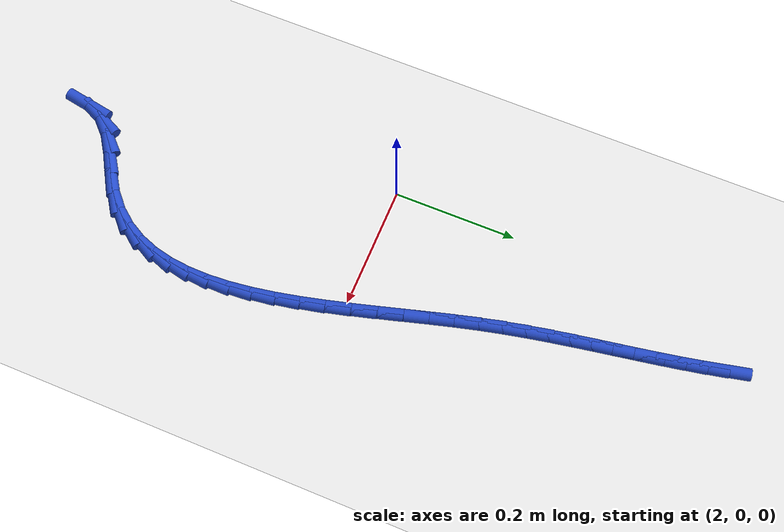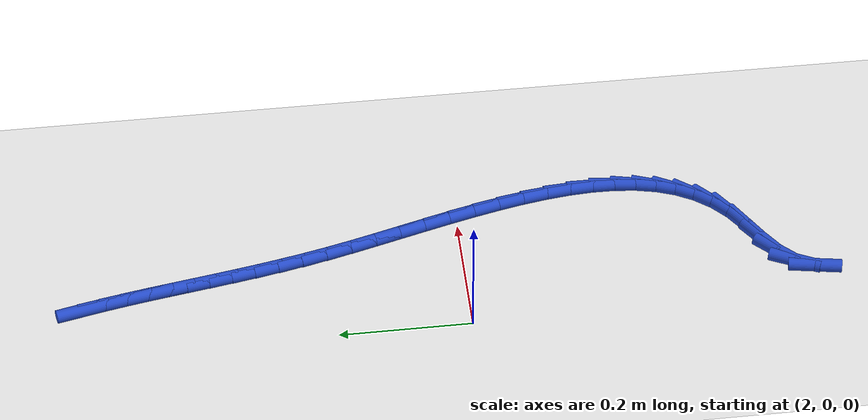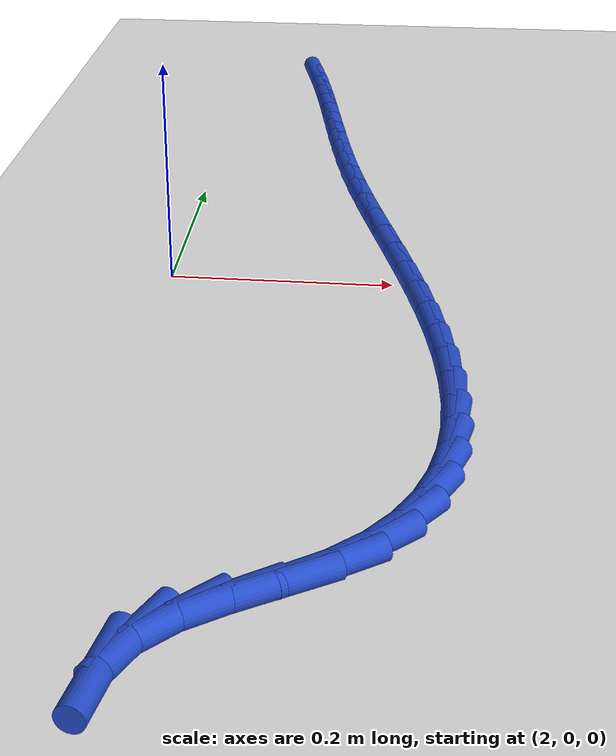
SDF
<sdf version="1.6">
 <world name="default">
  <model name="ground_plane">
   <static>1</static>
   <link name="link">
    <collision name="collision">
     <geometry><plane><normal>0 0 1</normal><size>100 100</size></plane></geometry>
     <surface><friction><ode><mu>100</mu><mu2>50</mu2></ode></friction></surface>
    </collision>
    <visual name="visual">
     <cast_shadows>0</cast_shadows>
     <geometry><plane><normal>0 0 1</normal><size>100 100</size></plane></geometry>
     <material>
      <script><uri>file://media/materials/scripts/gazebo.material</uri><name>Gazebo/WhiteGlow</name></script>
     </material>
    </visual>
   </link>
  </model>
  <model name="line">
   <link name="link_87">
    <pose>2.0848642311916312 0.573121603409432 0.01 0 1.57 -1.3496269318410352</pose>
    <collision name="collision">
     <geometry><cylinder><radius>0.01</radius><length>0.08</length></cylinder></geometry>
    </collision>
    <visual name="visual">
     <material>
      <script><name>Gazebo/Blue</name><uri>file://media/materials/scripts/gazebo.material</uri></script>
     </material>
     <geometry><cylinder><radius>0.01</radius><length>0.08</length></cylinder></geometry>
    </visual>
   </link>
   <link name="link_88">
    <pose>2.0921163542295593 0.5408681011771894 0.01 0 1.57 -1.369022476120428</pose>
    <collision name="collision">
     <geometry><cylinder><radius>0.01</radius><length>0.08</length></cylinder></geometry>
    </collision>
    <visual name="visual">
     <material>
      <script><name>Gazebo/Blue</name><uri>file://media/materials/scripts/gazebo.material</uri></script>
     </material>
     <geometry><cylinder><radius>0.01</radius><length>0.08</length></cylinder></geometry>
    </visual>
   </link>
   <link name="link_89">
    <pose>2.098708754404504 0.5086404779750255 0.01 0 1.57 -1.3838342472088596</pose>
    <collision name="collision">
     <geometry><cylinder><radius>0.01</radius><length>0.08</length></cylinder></geometry>
    </collision>
    <visual name="visual">
     <material>
      <script><name>Gazebo/Blue</name><uri>file://media/materials/scripts/gazebo.material</uri></script>
     </material>
     <geometry><cylinder><radius>0.01</radius><length>0.08</length></cylinder></geometry>
    </visual>
   </link>
   <link name="link_90">
    <pose>2.1048186800212227 0.4763421170943897 0.01 0 1.57 -1.3938710612554566</pose>
    <collision name="collision">
     <geometry><cylinder><radius>0.01</radius><length>0.08</length></cylinder></geometry>
    </collision>
    <visual name="visual">
     <material>
      <script><name>Gazebo/Blue</name><uri>file://media/materials/scripts/gazebo.material</uri></script>
     </material>
     <geometry><cylinder><radius>0.01</radius><length>0.08</length></cylinder></geometry>
    </visual>
   </link>
   <link name="link_91">
    <pose>2.1106233793844735 0.4438764018267317 0.01 0 1.57 -1.3990621951998656</pose>
    <collision name="collision">
     <geometry><cylinder><radius>0.01</radius><length>0.08</length></cylinder></geometry>
    </collision>
    <visual name="visual">
     <material>
      <script><name>Gazebo/Blue</name><uri>file://media/materials/scripts/gazebo.material</uri></script>
     </material>
     <geometry><cylinder><radius>0.01</radius><length>0.08</length></cylinder></geometry>
    </visual>
   </link>
   <link name="link_92">
    <pose>2.1163001007990094 0.41114671546350084 0.01 0 1.57 -1.399451561350851</pose>
    <collision name="collision">
     <geometry><cylinder><radius>0.01</radius><length>0.08</length></cylinder></geometry>
    </collision>
    <visual name="visual">
     <material>
      <script><name>Gazebo/Blue</name><uri>file://media/materials/scripts/gazebo.material</uri></script>
     </material>
     <geometry><cylinder><radius>0.01</radius><length>0.08</length></cylinder></geometry>
    </visual>
   </link>
   <link name="link_93">
    <pose>2.1220260925695906 0.37805644129614796 0.01 0 1.57 -1.3951886055392264</pose>
    <collision name="collision">
     <geometry><cylinder><radius>0.01</radius><length>0.08</length></cylinder></geometry>
    </collision>
    <visual name="visual">
     <material>
      <script><name>Gazebo/Blue</name><uri>file://media/materials/scripts/gazebo.material</uri></script>
     </material>
     <geometry><cylinder><radius>0.01</radius><length>0.08</length></cylinder></geometry>
    </visual>
   </link>
   <link name="link_94">
    <pose>2.127978603000971 0.3445089626161221 0.01 0 1.57 -1.3865170366263382</pose>
    <collision name="collision">
     <geometry><cylinder><radius>0.01</radius><length>0.08</length></cylinder></geometry>
    </collision>
    <visual name="visual">
     <material>
      <script><name>Gazebo/Blue</name><uri>file://media/materials/scripts/gazebo.material</uri></script>
     </material>
     <geometry><cylinder><radius>0.01</radius><length>0.08</length></cylinder></geometry>
    </visual>
   </link>
   <link name="link_95">
    <pose>2.134334880397908 0.3104076627148731 0.01 0 1.57 -1.3737620062558067</pose>
    <collision name="collision">
     <geometry><cylinder><radius>0.01</radius><length>0.08</length></cylinder></geometry>
    </collision>
    <visual name="visual">
     <material>
      <script><name>Gazebo/Blue</name><uri>file://media/materials/scripts/gazebo.material</uri></script>
     </material>
     <geometry><cylinder><radius>0.01</radius><length>0.08</length></cylinder></geometry>
    </visual>
   </link>
   <link name="link_96">
    <pose>2.141272173065157 0.2756559248838511 0.01 0 1.57 -1.3573159914537904</pose>
    <collision name="collision">
     <geometry><cylinder><radius>0.01</radius><length>0.08</length></cylinder></geometry>
    </collision>
    <visual name="visual">
     <material>
      <script><name>Gazebo/Blue</name><uri>file://media/materials/scripts/gazebo.material</uri></script>
     </material>
     <geometry><cylinder><radius>0.01</radius><length>0.08</length></cylinder></geometry>
    </visual>
   </link>
   <link name="link_97">
    <pose>2.1489677293074774 0.24015713241450592 0.01 0 1.57 -1.3376234815509043</pose>
    <collision name="collision">
     <geometry><cylinder><radius>0.01</radius><length>0.08</length></cylinder></geometry>
    </collision>
    <visual name="visual">
     <material>
      <script><name>Gazebo/Blue</name><uri>file://media/materials/scripts/gazebo.material</uri></script>
     </material>
     <geometry><cylinder><radius>0.01</radius><length>0.08</length></cylinder></geometry>
    </visual>
   </link>
   <link name="link_98">
    <pose>2.157598797429622 0.2038146685982867 0.01 0 1.57 -1.3161098623740906</pose>
    <collision name="collision">
     <geometry><cylinder><radius>0.01</radius><length>0.08</length></cylinder></geometry>
    </collision>
    <visual name="visual">
     <material>
      <script><name>Gazebo/Blue</name><uri>file://media/materials/scripts/gazebo.material</uri></script>
     </material>
     <geometry><cylinder><radius>0.01</radius><length>0.08</length></cylinder></geometry>
    </visual>
   </link>
   <link name="link_99">
    <pose>2.167298325439597 0.16655750655973975 0.01 0 1.57 -1.2999298687761016</pose>
    <collision name="collision">
     <geometry><cylinder><radius>0.01</radius><length>0.08</length></cylinder></geometry>
    </collision>
    <visual name="visual">
     <material>
      <script><name>Gazebo/Blue</name><uri>file://media/materials/scripts/gazebo.material</uri></script>
     </material>
     <geometry><cylinder><radius>0.01</radius><length>0.08</length></cylinder></geometry>
    </visual>
   </link>
   <link name="link_100">
    <pose>2.177864309486134 0.12850810260077422 0.01 0 1.57 -1.2915407551429319</pose>
    <collision name="collision">
     <geometry><cylinder><radius>0.01</radius><length>0.08</length></cylinder></geometry>
    </collision>
    <visual name="visual">
     <material>
      <script><name>Gazebo/Blue</name><uri>file://media/materials/scripts/gazebo.material</uri></script>
     </material>
     <geometry><cylinder><radius>0.01</radius><length>0.08</length></cylinder></geometry>
    </visual>
   </link>
   <link name="link_101">
    <pose>2.188941615250674 0.08987736803121261 0.01 0 1.57 -1.2903728281302584</pose>
    <collision name="collision">
     <geometry><cylinder><radius>0.01</radius><length>0.08</length></cylinder></geometry>
    </collision>
    <visual name="visual">
     <material>
      <script><name>Gazebo/Blue</name><uri>file://media/materials/scripts/gazebo.material</uri></script>
     </material>
     <geometry><cylinder><radius>0.01</radius><length>0.08</length></cylinder></geometry>
    </visual>
   </link>
   <link name="link_102">
    <pose>2.200174319336441 0.05087666996775567 0.01 0 1.57 -1.29618811551721</pose>
    <collision name="collision">
     <geometry><cylinder><radius>0.01</radius><length>0.08</length></cylinder></geometry>
    </collision>
    <visual name="visual">
     <material>
      <script><name>Gazebo/Blue</name><uri>file://media/materials/scripts/gazebo.material</uri></script>
     </material>
     <geometry><cylinder><radius>0.01</radius><length>0.08</length></cylinder></geometry>
    </visual>
   </link>
   <link name="link_103">
    <pose>2.211206498346658 0.011717375527102343 0.01 0 1.57 -1.3090644806584035</pose>
    <collision name="collision">
     <geometry><cylinder><radius>0.01</radius><length>0.08</length></cylinder></geometry>
    </collision>
    <visual name="visual">
     <material>
      <script><name>Gazebo/Blue</name><uri>file://media/materials/scripts/gazebo.material</uri></script>
     </material>
     <geometry><cylinder><radius>0.01</radius><length>0.08</length></cylinder></geometry>
    </visual>
   </link>
   <link name="link_104">
    <pose>2.2216822288845495 -0.027389148174047535 0.01 0 1.57 -1.3293885016224656</pose>
    <collision name="collision">
     <geometry><cylinder><radius>0.01</radius><length>0.08</length></cylinder></geometry>
    </collision>
    <visual name="visual">
     <material>
      <script><name>Gazebo/Blue</name><uri>file://media/materials/scripts/gazebo.material</uri></script>
     </material>
     <geometry><cylinder><radius>0.01</radius><length>0.08</length></cylinder></geometry>
    </visual>
   </link>
   <link name="link_105">
    <pose>2.2312455875533392 -0.06623153401899454 0.01 0 1.57 -1.357869889625839</pose>
    <collision name="collision">
     <geometry><cylinder><radius>0.01</radius><length>0.08</length></cylinder></geometry>
    </collision>
    <visual name="visual">
     <material>
      <script><name>Gazebo/Blue</name><uri>file://media/materials/scripts/gazebo.material</uri></script>
     </material>
     <geometry><cylinder><radius>0.01</radius><length>0.08</length></cylinder></geometry>
    </visual>
   </link>
   <link name="link_106">
    <pose>2.2395406509562505 -0.1045984148910398 0.01 0 1.57 -1.39557258484647</pose>
    <collision name="collision">
     <geometry><cylinder><radius>0.01</radius><length>0.08</length></cylinder></geometry>
    </collision>
    <visual name="visual">
     <material>
      <script><name>Gazebo/Blue</name><uri>file://media/materials/scripts/gazebo.material</uri></script>
     </material>
     <geometry><cylinder><radius>0.01</radius><length>0.08</length></cylinder></geometry>
    </visual>
   </link>
   <link name="link_107">
    <pose>2.2462114956965062 -0.1422784236734819 0.01 0 1.57 -1.4439530796082825</pose>
    <collision name="collision">
     <geometry><cylinder><radius>0.01</radius><length>0.08</length></cylinder></geometry>
    </collision>
    <visual name="visual">
     <material>
      <script><name>Gazebo/Blue</name><uri>file://media/materials/scripts/gazebo.material</uri></script>
     </material>
     <geometry><cylinder><radius>0.01</radius><length>0.08</length></cylinder></geometry>
    </visual>
   </link>
   <link name="link_108">
    <pose>2.2509021983773314 -0.1790601932496222 0.01 0 1.57 -1.504884248805586</pose>
    <collision name="collision">
     <geometry><cylinder><radius>0.01</radius><length>0.08</length></cylinder></geometry>
    </collision>
    <visual name="visual">
     <material>
      <script><name>Gazebo/Blue</name><uri>file://media/materials/scripts/gazebo.material</uri></script>
     </material>
     <geometry><cylinder><radius>0.01</radius><length>0.08</length></cylinder></geometry>
    </visual>
   </link>
   <link name="link_109">
    <pose>2.253256835601949 -0.21473235650276107 0.01 0 1.57 1.5609759745603562</pose>
    <collision name="collision">
     <geometry><cylinder><radius>0.01</radius><length>0.08</length></cylinder></geometry>
    </collision>
    <visual name="visual">
     <material>
      <script><name>Gazebo/Blue</name><uri>file://media/materials/scripts/gazebo.material</uri></script>
     </material>
     <geometry><cylinder><radius>0.01</radius><length>0.08</length></cylinder></geometry>
    </visual>
   </link>
   <link name="link_110">
    <pose>2.252919483973582 -0.24908354631619883 0.01 0 1.57 1.4680098576660467</pose>
    <collision name="collision">
     <geometry><cylinder><radius>0.01</radius><length>0.08</length></cylinder></geometry>
    </collision>
    <visual name="visual">
     <material>
      <script><name>Gazebo/Blue</name><uri>file://media/materials/scripts/gazebo.material</uri></script>
     </material>
     <geometry><cylinder><radius>0.01</radius><length>0.08</length></cylinder></geometry>
    </visual>
   </link>
   <link name="link_111">
    <pose>2.249534220095456 -0.28190239557323593 0.01 0 1.57 1.355702374910832</pose>
    <collision name="collision">
     <geometry><cylinder><radius>0.01</radius><length>0.08</length></cylinder></geometry>
    </collision>
    <visual name="visual">
     <material>
      <script><name>Gazebo/Blue</name><uri>file://media/materials/scripts/gazebo.material</uri></script>
     </material>
     <geometry><cylinder><radius>0.01</radius><length>0.08</length></cylinder></geometry>
    </visual>
   </link>
   <link name="link_112">
    <pose>2.2427451205707927 -0.31297753715717336 0.01 0 1.57 1.223246848611558</pose>
    <collision name="collision">
     <geometry><cylinder><radius>0.01</radius><length>0.08</length></cylinder></geometry>
    </collision>
    <visual name="visual">
     <material>
      <script><name>Gazebo/Blue</name><uri>file://media/materials/scripts/gazebo.material</uri></script>
     </material>
     <geometry><cylinder><radius>0.01</radius><length>0.08</length></cylinder></geometry>
    </visual>
   </link>
   <link name="link_113">
    <pose>2.2321962620028164 -0.34209760395131017 0.01 0 1.57 1.0725206651556052</pose>
    <collision name="collision">
     <geometry><cylinder><radius>0.01</radius><length>0.08</length></cylinder></geometry>
    </collision>
    <visual name="visual">
     <material>
      <script><name>Gazebo/Blue</name><uri>file://media/materials/scripts/gazebo.material</uri></script>
     </material>
     <geometry><cylinder><radius>0.01</radius><length>0.08</length></cylinder></geometry>
    </visual>
   </link>
   <link name="link_114">
    <pose>2.217531720994752 -0.36905122883894736 0.01 0 1.57 0.90920516822002</pose>
    <collision name="collision">
     <geometry><cylinder><radius>0.01</radius><length>0.08</length></cylinder></geometry>
    </collision>
    <visual name="visual">
     <material>
      <script><name>Gazebo/Blue</name><uri>file://media/materials/scripts/gazebo.material</uri></script>
     </material>
     <geometry><cylinder><radius>0.01</radius><length>0.08</length></cylinder></geometry>
    </visual>
   </link>
   <link name="link_115">
    <pose>2.1983955741498207 -0.3936270447033853 0.01 0 1.57 0.742399160835472</pose>
    <collision name="collision">
     <geometry><cylinder><radius>0.01</radius><length>0.08</length></cylinder></geometry>
    </collision>
    <visual name="visual">
     <material>
      <script><name>Gazebo/Blue</name><uri>file://media/materials/scripts/gazebo.material</uri></script>
     </material>
     <geometry><cylinder><radius>0.01</radius><length>0.08</length></cylinder></geometry>
    </visual>
   </link>
   <link name="link_116">
    <pose>2.1744318980712483 -0.41561368442792446 0.01 0 1.57 0.59211035047405</pose>
    <collision name="collision">
     <geometry><cylinder><radius>0.01</radius><length>0.08</length></cylinder></geometry>
    </collision>
    <visual name="visual">
     <material>
      <script><name>Gazebo/Blue</name><uri>file://media/materials/scripts/gazebo.material</uri></script>
     </material>
     <geometry><cylinder><radius>0.01</radius><length>0.08</length></cylinder></geometry>
    </visual>
   </link>
   <link name="link_117">
    <pose>2.1456285059048743 -0.4349873185390254 0.01 0 1.57 0.5340792307962072</pose>
    <collision name="collision">
     <geometry><cylinder><radius>0.01</radius><length>0.08</length></cylinder></geometry>
    </collision>
    <visual name="visual">
     <material>
      <script><name>Gazebo/Blue</name><uri>file://media/materials/scripts/gazebo.material</uri></script>
     </material>
     <geometry><cylinder><radius>0.01</radius><length>0.08</length></cylinder></geometry>
    </visual>
   </link>
   <link name="link_118">
    <pose>2.1147588621318754 -0.4532439282941166 0.01 0 1.57 0.5919691911795053</pose>
    <collision name="collision">
     <geometry><cylinder><radius>0.01</radius><length>0.08</length></cylinder></geometry>
    </collision>
    <visual name="visual">
     <material>
      <script><name>Gazebo/Blue</name><uri>file://media/materials/scripts/gazebo.material</uri></script>
     </material>
     <geometry><cylinder><radius>0.01</radius><length>0.08</length></cylinder></geometry>
    </visual>
   </link>
   <link name="link_119">
    <pose>2.0859478270819514 -0.47261679681117336 0.01 0 1.57 0.7877936590898658</pose>
    <collision name="collision">
     <geometry><cylinder><radius>0.01</radius><length>0.08</length></cylinder></geometry>
    </collision>
    <visual name="visual">
     <material>
      <script><name>Gazebo/Blue</name><uri>file://media/materials/scripts/gazebo.material</uri></script>
     </material>
     <geometry><cylinder><radius>0.01</radius><length>0.08</length></cylinder></geometry>
    </visual>
   </link>
   <link name="link_120">
    <pose>2.0633291779485985 -0.4953440721189739 0.01 0 1.57 1.1208890935586726</pose>
    <collision name="collision">
     <geometry><cylinder><radius>0.01</radius><length>0.08</length></cylinder></geometry>
    </collision>
    <visual name="visual">
     <material>
      <script><name>Gazebo/Blue</name><uri>file://media/materials/scripts/gazebo.material</uri></script>
     </material>
     <geometry><cylinder><radius>0.01</radius><length>0.08</length></cylinder></geometry>
    </visual>
   </link>
   <link name="link_121">
    <pose>2.0499371878896144 -0.523074166590876 0.01 0 1.57 1.3999272496466841</pose>
    <collision name="collision">
     <geometry><cylinder><radius>0.01</radius><length>0.08</length></cylinder></geometry>
    </collision>
    <visual name="visual">
     <material>
      <script><name>Gazebo/Blue</name><uri>file://media/materials/scripts/gazebo.material</uri></script>
     </material>
     <geometry><cylinder><radius>0.01</radius><length>0.08</length></cylinder></geometry>
    </visual>
   </link>
  </model>
 </world>
</sdf>
